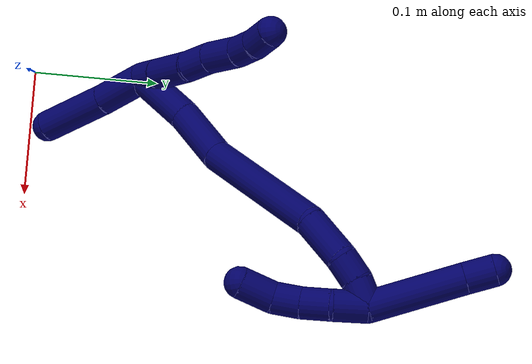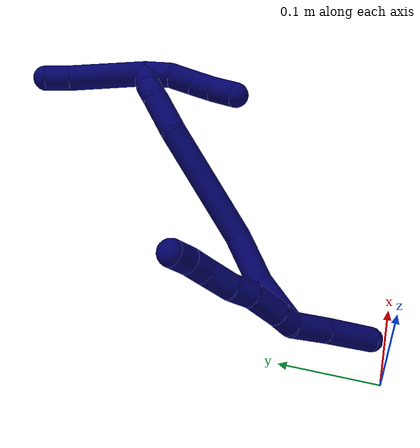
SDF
<sdf version="1.7">
 <world name="default">
  <model name="photoneo_s_sensor">
   <static>1</static>
   <pose>0 0 2 1.57079 1.57079 3.14159</pose>
   <link name="link">
    <inertial><mass>0.1</mass></inertial>
    <sensor name="sensor" type="depth">
     <update_rate>30</update_rate>
     <camera>
      <horizontal_fov>1.22</horizontal_fov>
      <image><width>1920</width><height>1200</height><format>B8G8R8</format></image>
      <clip><near>0.1</near><far>4</far></clip>
      <depth_camera><output>points</output></depth_camera>
     </camera>
     <plugin name="camera_plugin" filename="libgazebo_ros_depth_camera.so">
      <baseline>0.2</baseline>
      <alwaysOn>1</alwaysOn>
      <updateRate>0.0</updateRate>
      <cameraName>camera_ir</cameraName>
      <imageTopicName>/camera/color/image_raw</imageTopicName>
      <cameraInfoTopicName>/camera/color/camera_info</cameraInfoTopicName>
      <depthImageTopicName>/camera/depth/image_raw</depthImageTopicName>
      <depthImageCameraInfoTopicName>/camera/depth/camera_info</depthImageCameraInfoTopicName>
      <pointCloudTopicName>/camera/depth/points</pointCloudTopicName>
      <frameName>fr_optical</frameName>
      <pointCloudCutoff>0.1</pointCloudCutoff>
      <pointCloudCutoffMax>2.0</pointCloudCutoffMax>
      <distortionK1>0</distortionK1>
      <distortionK2>0</distortionK2>
      <distortionK3>0</distortionK3>
      <distortionT1>0</distortionT1>
      <distortionT2>0</distortionT2>
      <CxPrime>0</CxPrime>
      <Cx>0</Cx>
      <Cy>0</Cy>
      <focalLength>0</focalLength>
      <hackBaseline>0</hackBaseline>
     </plugin>
    </sensor>
   </link>
  </model>
  <model name="bin">
   <static>1</static>
   <link name="bottom">
    <collision name="collision-bottom">
     <pose>0 0 -0.01 0 -0 0</pose>
     <geometry><box><size>0.8 0.6 0.02</size></box></geometry>
     <surface>
      <friction><ode><mu>100</mu><mu2>100</mu2></ode></friction>
      <contact><collide_bitmask>65535</collide_bitmask></contact>
     </surface>
    </collision>
   </link>
   <link name="west_wall">
    <collision name="collision-west_wall">
     <pose>-0.41 0 0.1 0 -0 0</pose>
     <geometry><box><size>0.02 0.6 0.2</size></box></geometry>
     <surface>
      <friction><ode><mu>100</mu><mu2>100</mu2></ode></friction>
      <contact><collide_bitmask>65535</collide_bitmask></contact>
     </surface>
    </collision>
   </link>
   <link name="east_wall">
    <collision name="collision-east_wall">
     <pose>0.41 0 0.1 0 -0 0</pose>
     <geometry><box><size>0.02 0.6 0.2</size></box></geometry>
     <surface>
      <friction><ode><mu>100</mu><mu2>100</mu2></ode></friction>
      <contact><collide_bitmask>65535</collide_bitmask></contact>
     </surface>
    </collision>
   </link>
   <link name="south_wall">
    <collision name="collision-south_wall">
     <pose>0 -0.31 0.1 0 -0 0</pose>
     <geometry><box><size>0.8 0.02 0.2</size></box></geometry>
     <surface>
      <friction><ode><mu>100</mu><mu2>100</mu2></ode></friction>
      <contact><collide_bitmask>65535</collide_bitmask></contact>
     </surface>
    </collision>
   </link>
   <link name="north_wall">
    <collision name="collision-north_wall">
     <pose>0 0.31 0.1 0 -0 0</pose>
     <geometry><box><size>0.8 0.02 0.2</size></box></geometry>
     <surface>
      <friction><ode><mu>100</mu><mu2>100</mu2></ode></friction>
      <contact><collide_bitmask>65535</collide_bitmask></contact>
     </surface>
    </collision>
   </link>
  </model>
  <model name="7">
   <static>0</static>
   <link name="7">
    <collision name="collision-cylinder-e_1_2_8">
     <pose>0.002002 -0.000915 0.01003 0.090983 0.196228 0.008962</pose>
     <geometry><cylinder><radius>0.0125</radius><length>0.020537</length></cylinder></geometry>
     <surface>
      <friction><ode><mu>1.16</mu><mu2>1.16</mu2><slip1>0</slip1><slip2>0</slip2></ode></friction>
      <contact><ode><kp>1e+06</kp><kd>1</kd><max_vel>0</max_vel><min_depth>0.001</min_depth></ode></contact>
     </surface>
    </collision>
    <visual name="visual-cylinder-e_1_2_8">
     <pose>0.002002 -0.000915 0.01003 0.090983 0.196228 0.008962</pose>
     <geometry><cylinder><radius>0.0125</radius><length>0.020537</length></cylinder></geometry>
     <material><ambient>0.003922 0 0.403922 1</ambient></material>
    </visual>
    <collision name="collision-cylinder-e_2_8_9">
     <pose>0.006214 -0.00319 0.037571 0.077481 0.125178 0.004858</pose>
     <geometry><cylinder><radius>0.0125</radius><length>0.035406</length></cylinder></geometry>
     <surface>
      <friction><ode><mu>1.16</mu><mu2>1.16</mu2><slip1>0</slip1><slip2>0</slip2></ode></friction>
      <contact><ode><kp>1e+06</kp><kd>1</kd><max_vel>0</max_vel><min_depth>0.001</min_depth></ode></contact>
     </surface>
    </collision>
    <visual name="visual-cylinder-e_2_8_9">
     <pose>0.006214 -0.00319 0.037571 0.077481 0.125178 0.004858</pose>
     <geometry><cylinder><radius>0.0125</radius><length>0.035406</length></cylinder></geometry>
     <material><ambient>0.003922 0 0.403922 1</ambient></material>
    </visual>
    <collision name="collision-cylinder-e_3_9_10">
     <pose>0.007395 -0.006071 0.066178 0.136348 -0.091703 -0.006266</pose>
     <geometry><cylinder><radius>0.0125</radius><length>0.022491</length></cylinder></geometry>
     <surface>
      <friction><ode><mu>1.16</mu><mu2>1.16</mu2><slip1>0</slip1><slip2>0</slip2></ode></friction>
      <contact><ode><kp>1e+06</kp><kd>1</kd><max_vel>0</max_vel><min_depth>0.001</min_depth></ode></contact>
     </surface>
    </collision>
    <visual name="visual-cylinder-e_3_9_10">
     <pose>0.007395 -0.006071 0.066178 0.136348 -0.091703 -0.006266</pose>
     <geometry><cylinder><radius>0.0125</radius><length>0.022491</length></cylinder></geometry>
     <material><ambient>0.003922 0 0.403922 1</ambient></material>
    </visual>
    <collision name="collision-cylinder-e_4_10_11">
     <pose>0.007164 -0.0081 0.092337 0.033595 0.052985 0.00089</pose>
     <geometry><cylinder><radius>0.0125</radius><length>0.03019</length></cylinder></geometry>
     <surface>
      <friction><ode><mu>1.16</mu><mu2>1.16</mu2><slip1>0</slip1><slip2>0</slip2></ode></friction>
      <contact><ode><kp>1e+06</kp><kd>1</kd><max_vel>0</max_vel><min_depth>0.001</min_depth></ode></contact>
     </surface>
    </collision>
    <visual name="visual-cylinder-e_4_10_11">
     <pose>0.007164 -0.0081 0.092337 0.033595 0.052985 0.00089</pose>
     <geometry><cylinder><radius>0.0125</radius><length>0.03019</length></cylinder></geometry>
     <material><ambient>0.003922 0 0.403922 1</ambient></material>
    </visual>
    <collision name="collision-cylinder-e_5_11_12">
     <pose>0.00917 -0.010632 0.117258 0.202774 0.119299 0.012151</pose>
     <geometry><cylinder><radius>0.0125</radius><length>0.020268</length></cylinder></geometry>
     <surface>
      <friction><ode><mu>1.16</mu><mu2>1.16</mu2><slip1>0</slip1><slip2>0</slip2></ode></friction>
      <contact><ode><kp>1e+06</kp><kd>1</kd><max_vel>0</max_vel><min_depth>0.001</min_depth></ode></contact>
     </surface>
    </collision>
    <visual name="visual-cylinder-e_5_11_12">
     <pose>0.00917 -0.010632 0.117258 0.202774 0.119299 0.012151</pose>
     <geometry><cylinder><radius>0.0125</radius><length>0.020268</length></cylinder></geometry>
     <material><ambient>0.003922 0 0.403922 1</ambient></material>
    </visual>
    <collision name="collision-cylinder-e_6_12_6">
     <pose>0.01112 -0.016431 0.136943 0.366443 0.070586 0.013085</pose>
     <geometry><cylinder><radius>0.0125</radius><length>0.021108</length></cylinder></geometry>
     <surface>
      <friction><ode><mu>1.16</mu><mu2>1.16</mu2><slip1>0</slip1><slip2>0</slip2></ode></friction>
      <contact><ode><kp>1e+06</kp><kd>1</kd><max_vel>0</max_vel><min_depth>0.001</min_depth></ode></contact>
     </surface>
    </collision>
    <visual name="visual-cylinder-e_6_12_6">
     <pose>0.01112 -0.016431 0.136943 0.366443 0.070586 0.013085</pose>
     <geometry><cylinder><radius>0.0125</radius><length>0.021108</length></cylinder></geometry>
     <material><ambient>0.003922 0 0.403922 1</ambient></material>
    </visual>
    <collision name="collision-cylinder-e_1_2_13">
     <pose>0.003967 0.004667 -0.01962 -2.90809 0.194245 -1.38635</pose>
     <geometry><cylinder><radius>0.0125</radius><length>0.041108</length></cylinder></geometry>
     <surface>
      <friction><ode><mu>1.16</mu><mu2>1.16</mu2><slip1>0</slip1><slip2>0</slip2></ode></friction>
      <contact><ode><kp>1e+06</kp><kd>1</kd><max_vel>0</max_vel><min_depth>0.001</min_depth></ode></contact>
     </surface>
    </collision>
    <visual name="visual-cylinder-e_1_2_13">
     <pose>0.003967 0.004667 -0.01962 -2.90809 0.194245 -1.38635</pose>
     <geometry><cylinder><radius>0.0125</radius><length>0.041108</length></cylinder></geometry>
     <material><ambient>0.003922 0 0.403922 1</ambient></material>
    </visual>
    <collision name="collision-cylinder-e_2_13_5">
     <pose>0.01362 0.014595 -0.067649 -2.95845 0.194304 -1.63026</pose>
     <geometry><cylinder><radius>0.0125</radius><length>0.058892</length></cylinder></geometry>
     <surface>
      <friction><ode><mu>1.16</mu><mu2>1.16</mu2><slip1>0</slip1><slip2>0</slip2></ode></friction>
      <contact><ode><kp>1e+06</kp><kd>1</kd><max_vel>0</max_vel><min_depth>0.001</min_depth></ode></contact>
     </surface>
    </collision>
    <visual name="visual-cylinder-e_2_13_5">
     <pose>0.01362 0.014595 -0.067649 -2.95845 0.194304 -1.63026</pose>
     <geometry><cylinder><radius>0.0125</radius><length>0.058892</length></cylinder></geometry>
     <material><ambient>0.003922 0 0.403922 1</ambient></material>
    </visual>
    <collision name="collision-cylinder-e_1_2_14">
     <pose>0.004361 0.017215 0.017342 -0.781732 0.176628 -0.07294</pose>
     <geometry><cylinder><radius>0.0125</radius><length>0.049643</length></cylinder></geometry>
     <surface>
      <friction><ode><mu>1.16</mu><mu2>1.16</mu2><slip1>0</slip1><slip2>0</slip2></ode></friction>
      <contact><ode><kp>1e+06</kp><kd>1</kd><max_vel>0</max_vel><min_depth>0.001</min_depth></ode></contact>
     </surface>
    </collision>
    <visual name="visual-cylinder-e_1_2_14">
     <pose>0.004361 0.017215 0.017342 -0.781732 0.176628 -0.07294</pose>
     <geometry><cylinder><radius>0.0125</radius><length>0.049643</length></cylinder></geometry>
     <material><ambient>0.003922 0 0.403922 1</ambient></material>
    </visual>
    <collision name="collision-cylinder-e_2_14_15">
     <pose>0.018114 0.050152 0.051106 -0.763626 0.391703 -0.158982</pose>
     <geometry><cylinder><radius>0.0125</radius><length>0.049197</length></cylinder></geometry>
     <surface>
      <friction><ode><mu>1.16</mu><mu2>1.16</mu2><slip1>0</slip1><slip2>0</slip2></ode></friction>
      <contact><ode><kp>1e+06</kp><kd>1</kd><max_vel>0</max_vel><min_depth>0.001</min_depth></ode></contact>
     </surface>
    </collision>
    <visual name="visual-cylinder-e_2_14_15">
     <pose>0.018114 0.050152 0.051106 -0.763626 0.391703 -0.158982</pose>
     <geometry><cylinder><radius>0.0125</radius><length>0.049197</length></cylinder></geometry>
     <material><ambient>0.003922 0 0.403922 1</ambient></material>
    </visual>
    <collision name="collision-cylinder-e_3_15_16">
     <pose>0.049011 0.091056 0.116819 -0.472299 0.370594 -0.090153</pose>
     <geometry><cylinder><radius>0.0125</radius><length>0.118763</length></cylinder></geometry>
     <surface>
      <friction><ode><mu>1.16</mu><mu2>1.16</mu2><slip1>0</slip1><slip2>0</slip2></ode></friction>
      <contact><ode><kp>1e+06</kp><kd>1</kd><max_vel>0</max_vel><min_depth>0.001</min_depth></ode></contact>
     </surface>
    </collision>
    <visual name="visual-cylinder-e_3_15_16">
     <pose>0.049011 0.091056 0.116819 -0.472299 0.370594 -0.090153</pose>
     <geometry><cylinder><radius>0.0125</radius><length>0.118763</length></cylinder></geometry>
     <material><ambient>0.003922 0 0.403922 1</ambient></material>
    </visual>
    <collision name="collision-cylinder-e_4_16_17">
     <pose>0.076541 0.130254 0.178792 -0.835381 0.3085 -0.137792</pose>
     <geometry><cylinder><radius>0.0125</radius><length>0.03968</length></cylinder></geometry>
     <surface>
      <friction><ode><mu>1.16</mu><mu2>1.16</mu2><slip1>0</slip1><slip2>0</slip2></ode></friction>
      <contact><ode><kp>1e+06</kp><kd>1</kd><max_vel>0</max_vel><min_depth>0.001</min_depth></ode></contact>
     </surface>
    </collision>
    <visual name="visual-cylinder-e_4_16_17">
     <pose>0.076541 0.130254 0.178792 -0.835381 0.3085 -0.137792</pose>
     <geometry><cylinder><radius>0.0125</radius><length>0.03968</length></cylinder></geometry>
     <material><ambient>0.003922 0 0.403922 1</ambient></material>
    </visual>
    <collision name="collision-cylinder-e_5_17_18">
     <pose>0.084163 0.153595 0.195954 -1.12284 0.153317 -0.096541</pose>
     <geometry><cylinder><radius>0.0125</radius><length>0.020933</length></cylinder></geometry>
     <surface>
      <friction><ode><mu>1.16</mu><mu2>1.16</mu2><slip1>0</slip1><slip2>0</slip2></ode></friction>
      <contact><ode><kp>1e+06</kp><kd>1</kd><max_vel>0</max_vel><min_depth>0.001</min_depth></ode></contact>
     </surface>
    </collision>
    <visual name="visual-cylinder-e_5_17_18">
     <pose>0.084163 0.153595 0.195954 -1.12284 0.153317 -0.096541</pose>
     <geometry><cylinder><radius>0.0125</radius><length>0.020933</length></cylinder></geometry>
     <material><ambient>0.003922 0 0.403922 1</ambient></material>
    </visual>
    <collision name="collision-cylinder-e_6_18_1">
     <pose>0.088818 0.172964 0.20333 -1.2901 0.284457 -0.21466</pose>
     <geometry><cylinder><radius>0.0125</radius><length>0.021784</length></cylinder></geometry>
     <surface>
      <friction><ode><mu>1.16</mu><mu2>1.16</mu2><slip1>0</slip1><slip2>0</slip2></ode></friction>
      <contact><ode><kp>1e+06</kp><kd>1</kd><max_vel>0</max_vel><min_depth>0.001</min_depth></ode></contact>
     </surface>
    </collision>
    <visual name="visual-cylinder-e_6_18_1">
     <pose>0.088818 0.172964 0.20333 -1.2901 0.284457 -0.21466</pose>
     <geometry><cylinder><radius>0.0125</radius><length>0.021784</length></cylinder></geometry>
     <material><ambient>0.003922 0 0.403922 1</ambient></material>
    </visual>
    <collision name="collision-cylinder-e_1_1_19">
     <pose>0.099087 0.1777 0.196244 2.65285 0.56781 1.7273</pose>
     <geometry><cylinder><radius>0.0125</radius><length>0.026822</length></cylinder></geometry>
     <surface>
      <friction><ode><mu>1.16</mu><mu2>1.16</mu2><slip1>0</slip1><slip2>0</slip2></ode></friction>
      <contact><ode><kp>1e+06</kp><kd>1</kd><max_vel>0</max_vel><min_depth>0.001</min_depth></ode></contact>
     </surface>
    </collision>
    <visual name="visual-cylinder-e_1_1_19">
     <pose>0.099087 0.1777 0.196244 2.65285 0.56781 1.7273</pose>
     <geometry><cylinder><radius>0.0125</radius><length>0.026822</length></cylinder></geometry>
     <material><ambient>0.003922 0 0.403922 1</ambient></material>
    </visual>
    <collision name="collision-cylinder-e_2_19_20">
     <pose>0.109908 0.168588 0.175695 2.79601 0.310895 1.46332</pose>
     <geometry><cylinder><radius>0.0125</radius><length>0.02359</length></cylinder></geometry>
     <surface>
      <friction><ode><mu>1.16</mu><mu2>1.16</mu2><slip1>0</slip1><slip2>0</slip2></ode></friction>
      <contact><ode><kp>1e+06</kp><kd>1</kd><max_vel>0</max_vel><min_depth>0.001</min_depth></ode></contact>
     </surface>
    </collision>
    <visual name="visual-cylinder-e_2_19_20">
     <pose>0.109908 0.168588 0.175695 2.79601 0.310895 1.46332</pose>
     <geometry><cylinder><radius>0.0125</radius><length>0.02359</length></cylinder></geometry>
     <material><ambient>0.003922 0 0.403922 1</ambient></material>
    </visual>
    <collision name="collision-cylinder-e_3_20_21">
     <pose>0.117108 0.159867 0.155978 2.6486 0.332874 1.17738</pose>
     <geometry><cylinder><radius>0.0125</radius><length>0.021984</length></cylinder></geometry>
     <surface>
      <friction><ode><mu>1.16</mu><mu2>1.16</mu2><slip1>0</slip1><slip2>0</slip2></ode></friction>
      <contact><ode><kp>1e+06</kp><kd>1</kd><max_vel>0</max_vel><min_depth>0.001</min_depth></ode></contact>
     </surface>
    </collision>
    <visual name="visual-cylinder-e_3_20_21">
     <pose>0.117108 0.159867 0.155978 2.6486 0.332874 1.17738</pose>
     <geometry><cylinder><radius>0.0125</radius><length>0.021984</length></cylinder></geometry>
     <material><ambient>0.003922 0 0.403922 1</ambient></material>
    </visual>
    <collision name="collision-cylinder-e_4_21_4">
     <pose>0.125804 0.145298 0.138385 2.28933 0.378838 0.799223</pose>
     <geometry><cylinder><radius>0.0125</radius><length>0.027604</length></cylinder></geometry>
     <surface>
      <friction><ode><mu>1.16</mu><mu2>1.16</mu2><slip1>0</slip1><slip2>0</slip2></ode></friction>
      <contact><ode><kp>1e+06</kp><kd>1</kd><max_vel>0</max_vel><min_depth>0.001</min_depth></ode></contact>
     </surface>
    </collision>
    <visual name="visual-cylinder-e_4_21_4">
     <pose>0.125804 0.145298 0.138385 2.28933 0.378838 0.799223</pose>
     <geometry><cylinder><radius>0.0125</radius><length>0.027604</length></cylinder></geometry>
     <material><ambient>0.003922 0 0.403922 1</ambient></material>
    </visual>
    <collision name="collision-cylinder-e_1_1_22">
     <pose>0.068369 0.18551 0.236163 -0.083367 -0.663963 0.028755</pose>
     <geometry><cylinder><radius>0.0125</radius><length>0.07629</length></cylinder></geometry>
     <surface>
      <friction><ode><mu>1.16</mu><mu2>1.16</mu2><slip1>0</slip1><slip2>0</slip2></ode></friction>
      <contact><ode><kp>1e+06</kp><kd>1</kd><max_vel>0</max_vel><min_depth>0.001</min_depth></ode></contact>
     </surface>
    </collision>
    <visual name="visual-cylinder-e_1_1_22">
     <pose>0.068369 0.18551 0.236163 -0.083367 -0.663963 0.028755</pose>
     <geometry><cylinder><radius>0.0125</radius><length>0.07629</length></cylinder></geometry>
     <material><ambient>0.003922 0 0.403922 1</ambient></material>
    </visual>
    <collision name="collision-cylinder-e_2_22_3">
     <pose>0.038106 0.188789 0.275811 -0.079877 -0.606326 0.024998</pose>
     <geometry><cylinder><radius>0.0125</radius><length>0.02371</length></cylinder></geometry>
     <surface>
      <friction><ode><mu>1.16</mu><mu2>1.16</mu2><slip1>0</slip1><slip2>0</slip2></ode></friction>
      <contact><ode><kp>1e+06</kp><kd>1</kd><max_vel>0</max_vel><min_depth>0.001</min_depth></ode></contact>
     </surface>
    </collision>
    <visual name="visual-cylinder-e_2_22_3">
     <pose>0.038106 0.188789 0.275811 -0.079877 -0.606326 0.024998</pose>
     <geometry><cylinder><radius>0.0125</radius><length>0.02371</length></cylinder></geometry>
     <material><ambient>0.003922 0 0.403922 1</ambient></material>
    </visual>
    <collision name="collision-sphere-3">
     <pose>0.031351 0.189567 0.285522 0 -0 0</pose>
     <geometry><sphere><radius>0.0125</radius></sphere></geometry>
     <surface>
      <friction><ode><mu>1.16</mu><mu2>1.16</mu2><slip1>0</slip1><slip2>0</slip2></ode></friction>
      <contact><ode><kp>1e+06</kp><kd>1</kd><max_vel>0</max_vel><min_depth>0.001</min_depth></ode></contact>
     </surface>
    </collision>
    <visual name="visual-sphere-3">
     <pose>0.031351 0.189567 0.285522 0 -0 0</pose>
     <geometry><sphere><radius>0.0125</radius></sphere></geometry>
     <material><ambient>0.003922 0 0.403922 1</ambient></material>
    </visual>
    <collision name="collision-sphere-22">
     <pose>0.044862 0.188012 0.2661 0 -0 0</pose>
     <geometry><sphere><radius>0.0125</radius></sphere></geometry>
     <surface>
      <friction><ode><mu>1.16</mu><mu2>1.16</mu2><slip1>0</slip1><slip2>0</slip2></ode></friction>
      <contact><ode><kp>1e+06</kp><kd>1</kd><max_vel>0</max_vel><min_depth>0.001</min_depth></ode></contact>
     </surface>
    </collision>
    <visual name="visual-sphere-22">
     <pose>0.044862 0.188012 0.2661 0 -0 0</pose>
     <geometry><sphere><radius>0.0125</radius></sphere></geometry>
     <material><ambient>0.003922 0 0.403922 1</ambient></material>
    </visual>
    <collision name="collision-sphere-4">
     <pose>0.130909 0.135644 0.129944 0 -0 0</pose>
     <geometry><sphere><radius>0.0125</radius></sphere></geometry>
     <surface>
      <friction><ode><mu>1.16</mu><mu2>1.16</mu2><slip1>0</slip1><slip2>0</slip2></ode></friction>
      <contact><ode><kp>1e+06</kp><kd>1</kd><max_vel>0</max_vel><min_depth>0.001</min_depth></ode></contact>
     </surface>
    </collision>
    <visual name="visual-sphere-4">
     <pose>0.130909 0.135644 0.129944 0 -0 0</pose>
     <geometry><sphere><radius>0.0125</radius></sphere></geometry>
     <material><ambient>0.003922 0 0.403922 1</ambient></material>
    </visual>
    <collision name="collision-sphere-21">
     <pose>0.120699 0.154951 0.146827 0 -0 0</pose>
     <geometry><sphere><radius>0.0125</radius></sphere></geometry>
     <surface>
      <friction><ode><mu>1.16</mu><mu2>1.16</mu2><slip1>0</slip1><slip2>0</slip2></ode></friction>
      <contact><ode><kp>1e+06</kp><kd>1</kd><max_vel>0</max_vel><min_depth>0.001</min_depth></ode></contact>
     </surface>
    </collision>
    <visual name="visual-sphere-21">
     <pose>0.120699 0.154951 0.146827 0 -0 0</pose>
     <geometry><sphere><radius>0.0125</radius></sphere></geometry>
     <material><ambient>0.003922 0 0.403922 1</ambient></material>
    </visual>
    <collision name="collision-sphere-20">
     <pose>0.113516 0.164784 0.165129 0 -0 0</pose>
     <geometry><sphere><radius>0.0125</radius></sphere></geometry>
     <surface>
      <friction><ode><mu>1.16</mu><mu2>1.16</mu2><slip1>0</slip1><slip2>0</slip2></ode></friction>
      <contact><ode><kp>1e+06</kp><kd>1</kd><max_vel>0</max_vel><min_depth>0.001</min_depth></ode></contact>
     </surface>
    </collision>
    <visual name="visual-sphere-20">
     <pose>0.113516 0.164784 0.165129 0 -0 0</pose>
     <geometry><sphere><radius>0.0125</radius></sphere></geometry>
     <material><ambient>0.003922 0 0.403922 1</ambient></material>
    </visual>
    <collision name="collision-sphere-12">
     <pose>0.010376 -0.012659 0.127114 0 -0 0</pose>
     <geometry><sphere><radius>0.0125</radius></sphere></geometry>
     <surface>
      <friction><ode><mu>1.16</mu><mu2>1.16</mu2><slip1>0</slip1><slip2>0</slip2></ode></friction>
      <contact><ode><kp>1e+06</kp><kd>1</kd><max_vel>0</max_vel><min_depth>0.001</min_depth></ode></contact>
     </surface>
    </collision>
    <visual name="visual-sphere-12">
     <pose>0.010376 -0.012659 0.127114 0 -0 0</pose>
     <geometry><sphere><radius>0.0125</radius></sphere></geometry>
     <material><ambient>0.003922 0 0.403922 1</ambient></material>
    </visual>
    <collision name="collision-sphere-11">
     <pose>0.007964 -0.008606 0.107403 0 -0 0</pose>
     <geometry><sphere><radius>0.0125</radius></sphere></geometry>
     <surface>
      <friction><ode><mu>1.16</mu><mu2>1.16</mu2><slip1>0</slip1><slip2>0</slip2></ode></friction>
      <contact><ode><kp>1e+06</kp><kd>1</kd><max_vel>0</max_vel><min_depth>0.001</min_depth></ode></contact>
     </surface>
    </collision>
    <visual name="visual-sphere-11">
     <pose>0.007964 -0.008606 0.107403 0 -0 0</pose>
     <geometry><sphere><radius>0.0125</radius></sphere></geometry>
     <material><ambient>0.003922 0 0.403922 1</ambient></material>
    </visual>
    <collision name="collision-sphere-10">
     <pose>0.006365 -0.007594 0.077272 0 -0 0</pose>
     <geometry><sphere><radius>0.0125</radius></sphere></geometry>
     <surface>
      <friction><ode><mu>1.16</mu><mu2>1.16</mu2><slip1>0</slip1><slip2>0</slip2></ode></friction>
      <contact><ode><kp>1e+06</kp><kd>1</kd><max_vel>0</max_vel><min_depth>0.001</min_depth></ode></contact>
     </surface>
    </collision>
    <visual name="visual-sphere-10">
     <pose>0.006365 -0.007594 0.077272 0 -0 0</pose>
     <geometry><sphere><radius>0.0125</radius></sphere></geometry>
     <material><ambient>0.003922 0 0.403922 1</ambient></material>
    </visual>
    <collision name="collision-sphere-9">
     <pose>0.008425 -0.004549 0.055083 0 -0 0</pose>
     <geometry><sphere><radius>0.0125</radius></sphere></geometry>
     <surface>
      <friction><ode><mu>1.16</mu><mu2>1.16</mu2><slip1>0</slip1><slip2>0</slip2></ode></friction>
      <contact><ode><kp>1e+06</kp><kd>1</kd><max_vel>0</max_vel><min_depth>0.001</min_depth></ode></contact>
     </surface>
    </collision>
    <visual name="visual-sphere-9">
     <pose>0.008425 -0.004549 0.055083 0 -0 0</pose>
     <geometry><sphere><radius>0.0125</radius></sphere></geometry>
     <material><ambient>0.003922 0 0.403922 1</ambient></material>
    </visual>
    <collision name="collision-sphere-2">
     <geometry><sphere><radius>0.0125</radius></sphere></geometry>
     <surface>
      <friction><ode><mu>1.16</mu><mu2>1.16</mu2><slip1>0</slip1><slip2>0</slip2></ode></friction>
      <contact><ode><kp>1e+06</kp><kd>1</kd><max_vel>0</max_vel><min_depth>0.001</min_depth></ode></contact>
     </surface>
    </collision>
    <visual name="visual-sphere-2">
     <geometry><sphere><radius>0.0125</radius></sphere></geometry>
     <material><ambient>0.003922 0 0.403922 1</ambient></material>
    </visual>
    <collision name="collision-sphere-19">
     <pose>0.106299 0.172392 0.186261 0 -0 0</pose>
     <geometry><sphere><radius>0.0125</radius></sphere></geometry>
     <surface>
      <friction><ode><mu>1.16</mu><mu2>1.16</mu2><slip1>0</slip1><slip2>0</slip2></ode></friction>
      <contact><ode><kp>1e+06</kp><kd>1</kd><max_vel>0</max_vel><min_depth>0.001</min_depth></ode></contact>
     </surface>
    </collision>
    <visual name="visual-sphere-19">
     <pose>0.106299 0.172392 0.186261 0 -0 0</pose>
     <geometry><sphere><radius>0.0125</radius></sphere></geometry>
     <material><ambient>0.003922 0 0.403922 1</ambient></material>
    </visual>
    <collision name="collision-sphere-8">
     <pose>0.004004 -0.00183 0.02006 0 -0 0</pose>
     <geometry><sphere><radius>0.0125</radius></sphere></geometry>
     <surface>
      <friction><ode><mu>1.16</mu><mu2>1.16</mu2><slip1>0</slip1><slip2>0</slip2></ode></friction>
      <contact><ode><kp>1e+06</kp><kd>1</kd><max_vel>0</max_vel><min_depth>0.001</min_depth></ode></contact>
     </surface>
    </collision>
    <visual name="visual-sphere-8">
     <pose>0.004004 -0.00183 0.02006 0 -0 0</pose>
     <geometry><sphere><radius>0.0125</radius></sphere></geometry>
     <material><ambient>0.003922 0 0.403922 1</ambient></material>
    </visual>
    <collision name="collision-sphere-6">
     <pose>0.011865 -0.020203 0.146772 0 -0 0</pose>
     <geometry><sphere><radius>0.0125</radius></sphere></geometry>
     <surface>
      <friction><ode><mu>1.16</mu><mu2>1.16</mu2><slip1>0</slip1><slip2>0</slip2></ode></friction>
      <contact><ode><kp>1e+06</kp><kd>1</kd><max_vel>0</max_vel><min_depth>0.001</min_depth></ode></contact>
     </surface>
    </collision>
    <visual name="visual-sphere-6">
     <pose>0.011865 -0.020203 0.146772 0 -0 0</pose>
     <geometry><sphere><radius>0.0125</radius></sphere></geometry>
     <material><ambient>0.003922 0 0.403922 1</ambient></material>
    </visual>
    <collision name="collision-sphere-13">
     <pose>0.007935 0.009333 -0.03924 0 -0 0</pose>
     <geometry><sphere><radius>0.0125</radius></sphere></geometry>
     <surface>
      <friction><ode><mu>1.16</mu><mu2>1.16</mu2><slip1>0</slip1><slip2>0</slip2></ode></friction>
      <contact><ode><kp>1e+06</kp><kd>1</kd><max_vel>0</max_vel><min_depth>0.001</min_depth></ode></contact>
     </surface>
    </collision>
    <visual name="visual-sphere-13">
     <pose>0.007935 0.009333 -0.03924 0 -0 0</pose>
     <geometry><sphere><radius>0.0125</radius></sphere></geometry>
     <material><ambient>0.003922 0 0.403922 1</ambient></material>
    </visual>
    <collision name="collision-sphere-5">
     <pose>0.019306 0.019857 -0.096058 0 -0 0</pose>
     <geometry><sphere><radius>0.0125</radius></sphere></geometry>
     <surface>
      <friction><ode><mu>1.16</mu><mu2>1.16</mu2><slip1>0</slip1><slip2>0</slip2></ode></friction>
      <contact><ode><kp>1e+06</kp><kd>1</kd><max_vel>0</max_vel><min_depth>0.001</min_depth></ode></contact>
     </surface>
    </collision>
    <visual name="visual-sphere-5">
     <pose>0.019306 0.019857 -0.096058 0 -0 0</pose>
     <geometry><sphere><radius>0.0125</radius></sphere></geometry>
     <material><ambient>0.003922 0 0.403922 1</ambient></material>
    </visual>
    <collision name="collision-sphere-14">
     <pose>0.008723 0.03443 0.034683 0 -0 0</pose>
     <geometry><sphere><radius>0.0125</radius></sphere></geometry>
     <surface>
      <friction><ode><mu>1.16</mu><mu2>1.16</mu2><slip1>0</slip1><slip2>0</slip2></ode></friction>
      <contact><ode><kp>1e+06</kp><kd>1</kd><max_vel>0</max_vel><min_depth>0.001</min_depth></ode></contact>
     </surface>
    </collision>
    <visual name="visual-sphere-14">
     <pose>0.008723 0.03443 0.034683 0 -0 0</pose>
     <geometry><sphere><radius>0.0125</radius></sphere></geometry>
     <material><ambient>0.003922 0 0.403922 1</ambient></material>
    </visual>
    <collision name="collision-sphere-15">
     <pose>0.027505 0.065875 0.067529 0 -0 0</pose>
     <geometry><sphere><radius>0.0125</radius></sphere></geometry>
     <surface>
      <friction><ode><mu>1.16</mu><mu2>1.16</mu2><slip1>0</slip1><slip2>0</slip2></ode></friction>
      <contact><ode><kp>1e+06</kp><kd>1</kd><max_vel>0</max_vel><min_depth>0.001</min_depth></ode></contact>
     </surface>
    </collision>
    <visual name="visual-sphere-15">
     <pose>0.027505 0.065875 0.067529 0 -0 0</pose>
     <geometry><sphere><radius>0.0125</radius></sphere></geometry>
     <material><ambient>0.003922 0 0.403922 1</ambient></material>
    </visual>
    <collision name="collision-sphere-16">
     <pose>0.070517 0.116237 0.16611 0 -0 0</pose>
     <geometry><sphere><radius>0.0125</radius></sphere></geometry>
     <surface>
      <friction><ode><mu>1.16</mu><mu2>1.16</mu2><slip1>0</slip1><slip2>0</slip2></ode></friction>
      <contact><ode><kp>1e+06</kp><kd>1</kd><max_vel>0</max_vel><min_depth>0.001</min_depth></ode></contact>
     </surface>
    </collision>
    <visual name="visual-sphere-16">
     <pose>0.070517 0.116237 0.16611 0 -0 0</pose>
     <geometry><sphere><radius>0.0125</radius></sphere></geometry>
     <material><ambient>0.003922 0 0.403922 1</ambient></material>
    </visual>
    <collision name="collision-sphere-17">
     <pose>0.082565 0.144272 0.191474 0 -0 0</pose>
     <geometry><sphere><radius>0.0125</radius></sphere></geometry>
     <surface>
      <friction><ode><mu>1.16</mu><mu2>1.16</mu2><slip1>0</slip1><slip2>0</slip2></ode></friction>
      <contact><ode><kp>1e+06</kp><kd>1</kd><max_vel>0</max_vel><min_depth>0.001</min_depth></ode></contact>
     </surface>
    </collision>
    <visual name="visual-sphere-17">
     <pose>0.082565 0.144272 0.191474 0 -0 0</pose>
     <geometry><sphere><radius>0.0125</radius></sphere></geometry>
     <material><ambient>0.003922 0 0.403922 1</ambient></material>
    </visual>
    <collision name="collision-sphere-18">
     <pose>0.085762 0.162918 0.200434 0 -0 0</pose>
     <geometry><sphere><radius>0.0125</radius></sphere></geometry>
     <surface>
      <friction><ode><mu>1.16</mu><mu2>1.16</mu2><slip1>0</slip1><slip2>0</slip2></ode></friction>
      <contact><ode><kp>1e+06</kp><kd>1</kd><max_vel>0</max_vel><min_depth>0.001</min_depth></ode></contact>
     </surface>
    </collision>
    <visual name="visual-sphere-18">
     <pose>0.085762 0.162918 0.200434 0 -0 0</pose>
     <geometry><sphere><radius>0.0125</radius></sphere></geometry>
     <material><ambient>0.003922 0 0.403922 1</ambient></material>
    </visual>
    <collision name="collision-sphere-1">
     <pose>0.091875 0.183009 0.206226 0 -0 0</pose>
     <geometry><sphere><radius>0.0125</radius></sphere></geometry>
     <surface>
      <friction><ode><mu>1.16</mu><mu2>1.16</mu2><slip1>0</slip1><slip2>0</slip2></ode></friction>
      <contact><ode><kp>1e+06</kp><kd>1</kd><max_vel>0</max_vel><min_depth>0.001</min_depth></ode></contact>
     </surface>
    </collision>
    <visual name="visual-sphere-1">
     <pose>0.091875 0.183009 0.206226 0 -0 0</pose>
     <geometry><sphere><radius>0.0125</radius></sphere></geometry>
     <material><ambient>0.003922 0 0.403922 1</ambient></material>
    </visual>
    <inertial>
     <pose>0.044145 0.081548 0.10717 0 -0 0</pose>
     <mass>0.75</mass>
     <inertia>
      <ixx>0.000191</ixx>
      <ixy>0</ixy>
      <ixz>0</ixz>
      <iyy>0.000189</iyy>
      <iyz>0</iyz>
      <izz>-0.000112</izz>
     </inertia>
    </inertial>
   </link>
   <pose>-0.001805 0.090166 0.062562 -0.380121 -0.859654 -0.834116</pose>
  </model>
 </world>
</sdf>
